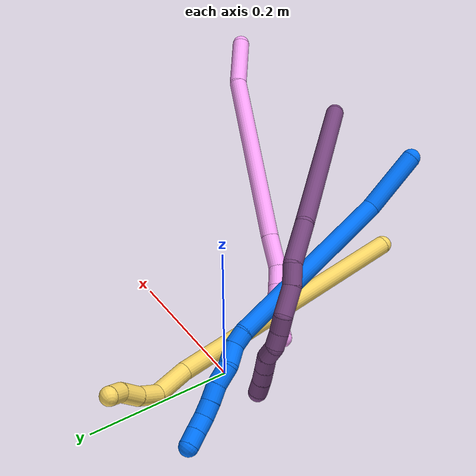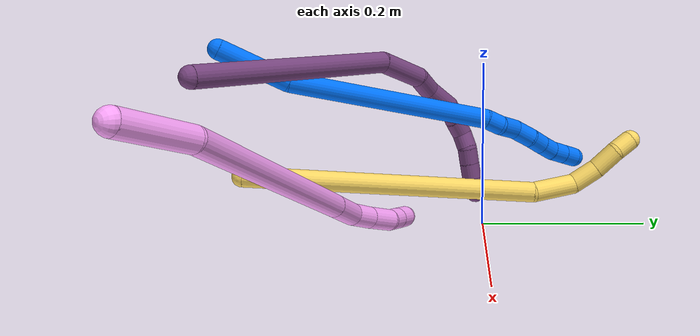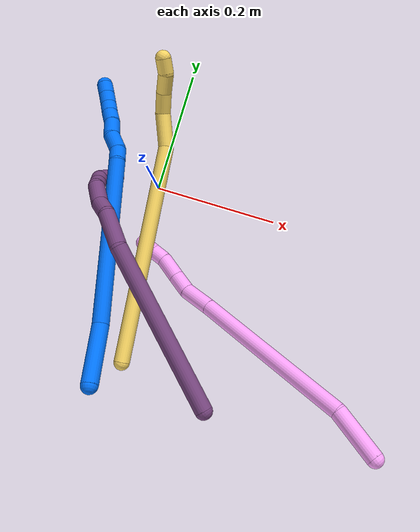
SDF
<sdf version="1.7">
 <world name="default">
  <model name="4">
   <static>0</static>
   <link name="4">
    <collision name="collision-cylinder-e_1_1_4">
     <pose>-0.008515 -0.000313 -0.037858 3.13333 -0.221224 -3.06723</pose>
     <geometry><cylinder><radius>0.0125</radius><length>0.07761</length></cylinder></geometry>
     <surface>
      <friction><ode><mu>1.16</mu><mu2>1.16</mu2><slip1>0</slip1><slip2>0</slip2></ode></friction>
      <contact><ode><kp>1e+06</kp><kd>1</kd><max_vel>0</max_vel><min_depth>0.001</min_depth></ode></contact>
     </surface>
    </collision>
    <visual name="visual-cylinder-e_1_1_4">
     <pose>-0.008515 -0.000313 -0.037858 3.13333 -0.221224 -3.06723</pose>
     <geometry><cylinder><radius>0.0125</radius><length>0.07761</length></cylinder></geometry>
     <material><ambient>1 0.65098 0.996078 1</ambient></material>
    </visual>
    <collision name="collision-cylinder-e_2_4_5">
     <pose>-0.063872 0.026676 -0.193125 -2.91312 -0.370645 2.04318</pose>
     <geometry><cylinder><radius>0.0125</radius><length>0.258647</length></cylinder></geometry>
     <surface>
      <friction><ode><mu>1.16</mu><mu2>1.16</mu2><slip1>0</slip1><slip2>0</slip2></ode></friction>
      <contact><ode><kp>1e+06</kp><kd>1</kd><max_vel>0</max_vel><min_depth>0.001</min_depth></ode></contact>
     </surface>
    </collision>
    <visual name="visual-cylinder-e_2_4_5">
     <pose>-0.063872 0.026676 -0.193125 -2.91312 -0.370645 2.04318</pose>
     <geometry><cylinder><radius>0.0125</radius><length>0.258647</length></cylinder></geometry>
     <material><ambient>1 0.65098 0.996078 1</ambient></material>
    </visual>
    <collision name="collision-cylinder-e_3_5_6">
     <pose>-0.119539 0.060053 -0.332651 -2.87351 -0.367246 1.8855</pose>
     <geometry><cylinder><radius>0.0125</radius><length>0.04915</length></cylinder></geometry>
     <surface>
      <friction><ode><mu>1.16</mu><mu2>1.16</mu2><slip1>0</slip1><slip2>0</slip2></ode></friction>
      <contact><ode><kp>1e+06</kp><kd>1</kd><max_vel>0</max_vel><min_depth>0.001</min_depth></ode></contact>
     </surface>
    </collision>
    <visual name="visual-cylinder-e_3_5_6">
     <pose>-0.119539 0.060053 -0.332651 -2.87351 -0.367246 1.8855</pose>
     <geometry><cylinder><radius>0.0125</radius><length>0.04915</length></cylinder></geometry>
     <material><ambient>1 0.65098 0.996078 1</ambient></material>
    </visual>
    <collision name="collision-cylinder-e_4_6_7">
     <pose>-0.132047 0.066111 -0.369662 3.14041 -0.24251 -3.13187</pose>
     <geometry><cylinder><radius>0.0125</radius><length>0.030685</length></cylinder></geometry>
     <surface>
      <friction><ode><mu>1.16</mu><mu2>1.16</mu2><slip1>0</slip1><slip2>0</slip2></ode></friction>
      <contact><ode><kp>1e+06</kp><kd>1</kd><max_vel>0</max_vel><min_depth>0.001</min_depth></ode></contact>
     </surface>
    </collision>
    <visual name="visual-cylinder-e_4_6_7">
     <pose>-0.132047 0.066111 -0.369662 3.14041 -0.24251 -3.13187</pose>
     <geometry><cylinder><radius>0.0125</radius><length>0.030685</length></cylinder></geometry>
     <material><ambient>1 0.65098 0.996078 1</ambient></material>
    </visual>
    <collision name="collision-cylinder-e_5_7_8">
     <pose>-0.139533 0.065777 -0.403173 3.1246 -0.201405 -2.9738</pose>
     <geometry><cylinder><radius>0.0125</radius><length>0.038009</length></cylinder></geometry>
     <surface>
      <friction><ode><mu>1.16</mu><mu2>1.16</mu2><slip1>0</slip1><slip2>0</slip2></ode></friction>
      <contact><ode><kp>1e+06</kp><kd>1</kd><max_vel>0</max_vel><min_depth>0.001</min_depth></ode></contact>
     </surface>
    </collision>
    <visual name="visual-cylinder-e_5_7_8">
     <pose>-0.139533 0.065777 -0.403173 3.1246 -0.201405 -2.9738</pose>
     <geometry><cylinder><radius>0.0125</radius><length>0.038009</length></cylinder></geometry>
     <material><ambient>1 0.65098 0.996078 1</ambient></material>
    </visual>
    <collision name="collision-cylinder-e_6_8_9">
     <pose>-0.144297 0.068259 -0.432605 -2.88842 -0.085871 0.651134</pose>
     <geometry><cylinder><radius>0.0125</radius><length>0.022424</length></cylinder></geometry>
     <surface>
      <friction><ode><mu>1.16</mu><mu2>1.16</mu2><slip1>0</slip1><slip2>0</slip2></ode></friction>
      <contact><ode><kp>1e+06</kp><kd>1</kd><max_vel>0</max_vel><min_depth>0.001</min_depth></ode></contact>
     </surface>
    </collision>
    <visual name="visual-cylinder-e_6_8_9">
     <pose>-0.144297 0.068259 -0.432605 -2.88842 -0.085871 0.651134</pose>
     <geometry><cylinder><radius>0.0125</radius><length>0.022424</length></cylinder></geometry>
     <material><ambient>1 0.65098 0.996078 1</ambient></material>
    </visual>
    <collision name="collision-cylinder-e_7_9_2">
     <pose>-0.146214 0.073887 -0.454771 -2.89724 -0.081526 0.641391</pose>
     <geometry><cylinder><radius>0.0125</radius><length>0.023475</length></cylinder></geometry>
     <surface>
      <friction><ode><mu>1.16</mu><mu2>1.16</mu2><slip1>0</slip1><slip2>0</slip2></ode></friction>
      <contact><ode><kp>1e+06</kp><kd>1</kd><max_vel>0</max_vel><min_depth>0.001</min_depth></ode></contact>
     </surface>
    </collision>
    <visual name="visual-cylinder-e_7_9_2">
     <pose>-0.146214 0.073887 -0.454771 -2.89724 -0.081526 0.641391</pose>
     <geometry><cylinder><radius>0.0125</radius><length>0.023475</length></cylinder></geometry>
     <material><ambient>1 0.65098 0.996078 1</ambient></material>
    </visual>
    <collision name="collision-sphere-2">
     <pose>-0.14717 0.076717 -0.466122 0 -0 0</pose>
     <geometry><sphere><radius>0.0125</radius></sphere></geometry>
     <surface>
      <friction><ode><mu>1.16</mu><mu2>1.16</mu2><slip1>0</slip1><slip2>0</slip2></ode></friction>
      <contact><ode><kp>1e+06</kp><kd>1</kd><max_vel>0</max_vel><min_depth>0.001</min_depth></ode></contact>
     </surface>
    </collision>
    <visual name="visual-sphere-2">
     <pose>-0.14717 0.076717 -0.466122 0 -0 0</pose>
     <geometry><sphere><radius>0.0125</radius></sphere></geometry>
     <material><ambient>1 0.65098 0.996078 1</ambient></material>
    </visual>
    <collision name="collision-sphere-9">
     <pose>-0.145258 0.071057 -0.44342 0 -0 0</pose>
     <geometry><sphere><radius>0.0125</radius></sphere></geometry>
     <surface>
      <friction><ode><mu>1.16</mu><mu2>1.16</mu2><slip1>0</slip1><slip2>0</slip2></ode></friction>
      <contact><ode><kp>1e+06</kp><kd>1</kd><max_vel>0</max_vel><min_depth>0.001</min_depth></ode></contact>
     </surface>
    </collision>
    <visual name="visual-sphere-9">
     <pose>-0.145258 0.071057 -0.44342 0 -0 0</pose>
     <geometry><sphere><radius>0.0125</radius></sphere></geometry>
     <material><ambient>1 0.65098 0.996078 1</ambient></material>
    </visual>
    <collision name="collision-sphere-4">
     <pose>-0.017029 -0.000626 -0.075716 0 -0 0</pose>
     <geometry><sphere><radius>0.0125</radius></sphere></geometry>
     <surface>
      <friction><ode><mu>1.16</mu><mu2>1.16</mu2><slip1>0</slip1><slip2>0</slip2></ode></friction>
      <contact><ode><kp>1e+06</kp><kd>1</kd><max_vel>0</max_vel><min_depth>0.001</min_depth></ode></contact>
     </surface>
    </collision>
    <visual name="visual-sphere-4">
     <pose>-0.017029 -0.000626 -0.075716 0 -0 0</pose>
     <geometry><sphere><radius>0.0125</radius></sphere></geometry>
     <material><ambient>1 0.65098 0.996078 1</ambient></material>
    </visual>
    <collision name="collision-sphere-1">
     <geometry><sphere><radius>0.0125</radius></sphere></geometry>
     <surface>
      <friction><ode><mu>1.16</mu><mu2>1.16</mu2><slip1>0</slip1><slip2>0</slip2></ode></friction>
      <contact><ode><kp>1e+06</kp><kd>1</kd><max_vel>0</max_vel><min_depth>0.001</min_depth></ode></contact>
     </surface>
    </collision>
    <visual name="visual-sphere-1">
     <geometry><sphere><radius>0.0125</radius></sphere></geometry>
     <material><ambient>1 0.65098 0.996078 1</ambient></material>
    </visual>
    <collision name="collision-sphere-8">
     <pose>-0.143335 0.065461 -0.421791 0 -0 0</pose>
     <geometry><sphere><radius>0.0125</radius></sphere></geometry>
     <surface>
      <friction><ode><mu>1.16</mu><mu2>1.16</mu2><slip1>0</slip1><slip2>0</slip2></ode></friction>
      <contact><ode><kp>1e+06</kp><kd>1</kd><max_vel>0</max_vel><min_depth>0.001</min_depth></ode></contact>
     </surface>
    </collision>
    <visual name="visual-sphere-8">
     <pose>-0.143335 0.065461 -0.421791 0 -0 0</pose>
     <geometry><sphere><radius>0.0125</radius></sphere></geometry>
     <material><ambient>1 0.65098 0.996078 1</ambient></material>
    </visual>
    <collision name="collision-sphere-5">
     <pose>-0.110715 0.053978 -0.310534 0 -0 0</pose>
     <geometry><sphere><radius>0.0125</radius></sphere></geometry>
     <surface>
      <friction><ode><mu>1.16</mu><mu2>1.16</mu2><slip1>0</slip1><slip2>0</slip2></ode></friction>
      <contact><ode><kp>1e+06</kp><kd>1</kd><max_vel>0</max_vel><min_depth>0.001</min_depth></ode></contact>
     </surface>
    </collision>
    <visual name="visual-sphere-5">
     <pose>-0.110715 0.053978 -0.310534 0 -0 0</pose>
     <geometry><sphere><radius>0.0125</radius></sphere></geometry>
     <material><ambient>1 0.65098 0.996078 1</ambient></material>
    </visual>
    <collision name="collision-sphere-6">
     <pose>-0.128363 0.066129 -0.354768 0 -0 0</pose>
     <geometry><sphere><radius>0.0125</radius></sphere></geometry>
     <surface>
      <friction><ode><mu>1.16</mu><mu2>1.16</mu2><slip1>0</slip1><slip2>0</slip2></ode></friction>
      <contact><ode><kp>1e+06</kp><kd>1</kd><max_vel>0</max_vel><min_depth>0.001</min_depth></ode></contact>
     </surface>
    </collision>
    <visual name="visual-sphere-6">
     <pose>-0.128363 0.066129 -0.354768 0 -0 0</pose>
     <geometry><sphere><radius>0.0125</radius></sphere></geometry>
     <material><ambient>1 0.65098 0.996078 1</ambient></material>
    </visual>
    <collision name="collision-sphere-7">
     <pose>-0.135731 0.066094 -0.384555 0 -0 0</pose>
     <geometry><sphere><radius>0.0125</radius></sphere></geometry>
     <surface>
      <friction><ode><mu>1.16</mu><mu2>1.16</mu2><slip1>0</slip1><slip2>0</slip2></ode></friction>
      <contact><ode><kp>1e+06</kp><kd>1</kd><max_vel>0</max_vel><min_depth>0.001</min_depth></ode></contact>
     </surface>
    </collision>
    <visual name="visual-sphere-7">
     <pose>-0.135731 0.066094 -0.384555 0 -0 0</pose>
     <geometry><sphere><radius>0.0125</radius></sphere></geometry>
     <material><ambient>1 0.65098 0.996078 1</ambient></material>
    </visual>
    <inertial>
     <pose>-0.07816 0.035242 -0.232566 0 -0 0</pose>
     <mass>0.5</mass>
     <inertia>
      <ixx>0.000536</ixx>
      <ixy>0</ixy>
      <ixz>0</ixz>
      <iyy>0.002023</iyy>
      <iyz>0</iyz>
      <izz>0.000195</izz>
     </inertia>
    </inertial>
   </link>
   <pose>0.409086 -0.291246 0.217897 0.312833 -1.42549 2.18963</pose>
  </model>
  <model name="5">
   <static>0</static>
   <link name="5">
    <collision name="collision-cylinder-e_1_1_4">
     <pose>-0.034045 0.161458 -0.060806 -1.93098 -0.194825 0.280594</pose>
     <geometry><cylinder><radius>0.0125</radius><length>0.351712</length></cylinder></geometry>
     <surface>
      <friction><ode><mu>1.16</mu><mu2>1.16</mu2><slip1>0</slip1><slip2>0</slip2></ode></friction>
      <contact><ode><kp>1e+06</kp><kd>1</kd><max_vel>0</max_vel><min_depth>0.001</min_depth></ode></contact>
     </surface>
    </collision>
    <visual name="visual-cylinder-e_1_1_4">
     <pose>-0.034045 0.161458 -0.060806 -1.93098 -0.194825 0.280594</pose>
     <geometry><cylinder><radius>0.0125</radius><length>0.351712</length></cylinder></geometry>
     <material><ambient>1 0.858824 0.4 1</ambient></material>
    </visual>
    <collision name="collision-cylinder-e_2_4_5">
     <pose>-0.076827 0.343616 -0.138139 -2.24454 -0.318651 0.64453</pose>
     <geometry><cylinder><radius>0.0125</radius><length>0.055782</length></cylinder></geometry>
     <surface>
      <friction><ode><mu>1.16</mu><mu2>1.16</mu2><slip1>0</slip1><slip2>0</slip2></ode></friction>
      <contact><ode><kp>1e+06</kp><kd>1</kd><max_vel>0</max_vel><min_depth>0.001</min_depth></ode></contact>
     </surface>
    </collision>
    <visual name="visual-cylinder-e_2_4_5">
     <pose>-0.076827 0.343616 -0.138139 -2.24454 -0.318651 0.64453</pose>
     <geometry><cylinder><radius>0.0125</radius><length>0.055782</length></cylinder></geometry>
     <material><ambient>1 0.858824 0.4 1</ambient></material>
    </visual>
    <collision name="collision-cylinder-e_3_5_6">
     <pose>-0.098019 0.37456 -0.161293 -2.14509 -0.795588 1.31533</pose>
     <geometry><cylinder><radius>0.0125</radius><length>0.034871</length></cylinder></geometry>
     <surface>
      <friction><ode><mu>1.16</mu><mu2>1.16</mu2><slip1>0</slip1><slip2>0</slip2></ode></friction>
      <contact><ode><kp>1e+06</kp><kd>1</kd><max_vel>0</max_vel><min_depth>0.001</min_depth></ode></contact>
     </surface>
    </collision>
    <visual name="visual-cylinder-e_3_5_6">
     <pose>-0.098019 0.37456 -0.161293 -2.14509 -0.795588 1.31533</pose>
     <geometry><cylinder><radius>0.0125</radius><length>0.034871</length></cylinder></geometry>
     <material><ambient>1 0.858824 0.4 1</ambient></material>
    </visual>
    <collision name="collision-cylinder-e_4_6_7">
     <pose>-0.12463 0.392476 -0.172244 -2.08389 -1.01441 1.52049</pose>
     <geometry><cylinder><radius>0.0125</radius><length>0.033343</length></cylinder></geometry>
     <surface>
      <friction><ode><mu>1.16</mu><mu2>1.16</mu2><slip1>0</slip1><slip2>0</slip2></ode></friction>
      <contact><ode><kp>1e+06</kp><kd>1</kd><max_vel>0</max_vel><min_depth>0.001</min_depth></ode></contact>
     </surface>
    </collision>
    <visual name="visual-cylinder-e_4_6_7">
     <pose>-0.12463 0.392476 -0.172244 -2.08389 -1.01441 1.52049</pose>
     <geometry><cylinder><radius>0.0125</radius><length>0.033343</length></cylinder></geometry>
     <material><ambient>1 0.858824 0.4 1</ambient></material>
    </visual>
    <collision name="collision-cylinder-e_5_7_2">
     <pose>-0.146787 0.406044 -0.183548 -2.4402 -0.719063 1.59789</pose>
     <geometry><cylinder><radius>0.0125</radius><length>0.024292</length></cylinder></geometry>
     <surface>
      <friction><ode><mu>1.16</mu><mu2>1.16</mu2><slip1>0</slip1><slip2>0</slip2></ode></friction>
      <contact><ode><kp>1e+06</kp><kd>1</kd><max_vel>0</max_vel><min_depth>0.001</min_depth></ode></contact>
     </surface>
    </collision>
    <visual name="visual-cylinder-e_5_7_2">
     <pose>-0.146787 0.406044 -0.183548 -2.4402 -0.719063 1.59789</pose>
     <geometry><cylinder><radius>0.0125</radius><length>0.024292</length></cylinder></geometry>
     <material><ambient>1 0.858824 0.4 1</ambient></material>
    </visual>
    <collision name="collision-sphere-2">
     <pose>-0.154787 0.411941 -0.190529 0 -0 0</pose>
     <geometry><sphere><radius>0.0125</radius></sphere></geometry>
     <surface>
      <friction><ode><mu>1.16</mu><mu2>1.16</mu2><slip1>0</slip1><slip2>0</slip2></ode></friction>
      <contact><ode><kp>1e+06</kp><kd>1</kd><max_vel>0</max_vel><min_depth>0.001</min_depth></ode></contact>
     </surface>
    </collision>
    <visual name="visual-sphere-2">
     <pose>-0.154787 0.411941 -0.190529 0 -0 0</pose>
     <geometry><sphere><radius>0.0125</radius></sphere></geometry>
     <material><ambient>1 0.858824 0.4 1</ambient></material>
    </visual>
    <collision name="collision-sphere-7">
     <pose>-0.138787 0.400147 -0.176566 0 -0 0</pose>
     <geometry><sphere><radius>0.0125</radius></sphere></geometry>
     <surface>
      <friction><ode><mu>1.16</mu><mu2>1.16</mu2><slip1>0</slip1><slip2>0</slip2></ode></friction>
      <contact><ode><kp>1e+06</kp><kd>1</kd><max_vel>0</max_vel><min_depth>0.001</min_depth></ode></contact>
     </surface>
    </collision>
    <visual name="visual-sphere-7">
     <pose>-0.138787 0.400147 -0.176566 0 -0 0</pose>
     <geometry><sphere><radius>0.0125</radius></sphere></geometry>
     <material><ambient>1 0.858824 0.4 1</ambient></material>
    </visual>
    <collision name="collision-sphere-6">
     <pose>-0.110473 0.384805 -0.167922 0 -0 0</pose>
     <geometry><sphere><radius>0.0125</radius></sphere></geometry>
     <surface>
      <friction><ode><mu>1.16</mu><mu2>1.16</mu2><slip1>0</slip1><slip2>0</slip2></ode></friction>
      <contact><ode><kp>1e+06</kp><kd>1</kd><max_vel>0</max_vel><min_depth>0.001</min_depth></ode></contact>
     </surface>
    </collision>
    <visual name="visual-sphere-6">
     <pose>-0.110473 0.384805 -0.167922 0 -0 0</pose>
     <geometry><sphere><radius>0.0125</radius></sphere></geometry>
     <material><ambient>1 0.858824 0.4 1</ambient></material>
    </visual>
    <collision name="collision-sphere-5">
     <pose>-0.085565 0.364315 -0.154665 0 -0 0</pose>
     <geometry><sphere><radius>0.0125</radius></sphere></geometry>
     <surface>
      <friction><ode><mu>1.16</mu><mu2>1.16</mu2><slip1>0</slip1><slip2>0</slip2></ode></friction>
      <contact><ode><kp>1e+06</kp><kd>1</kd><max_vel>0</max_vel><min_depth>0.001</min_depth></ode></contact>
     </surface>
    </collision>
    <visual name="visual-sphere-5">
     <pose>-0.085565 0.364315 -0.154665 0 -0 0</pose>
     <geometry><sphere><radius>0.0125</radius></sphere></geometry>
     <material><ambient>1 0.858824 0.4 1</ambient></material>
    </visual>
    <collision name="collision-sphere-1">
     <geometry><sphere><radius>0.0125</radius></sphere></geometry>
     <surface>
      <friction><ode><mu>1.16</mu><mu2>1.16</mu2><slip1>0</slip1><slip2>0</slip2></ode></friction>
      <contact><ode><kp>1e+06</kp><kd>1</kd><max_vel>0</max_vel><min_depth>0.001</min_depth></ode></contact>
     </surface>
    </collision>
    <visual name="visual-sphere-1">
     <geometry><sphere><radius>0.0125</radius></sphere></geometry>
     <material><ambient>1 0.858824 0.4 1</ambient></material>
    </visual>
    <collision name="collision-sphere-4">
     <pose>-0.068089 0.322917 -0.121613 0 -0 0</pose>
     <geometry><sphere><radius>0.0125</radius></sphere></geometry>
     <surface>
      <friction><ode><mu>1.16</mu><mu2>1.16</mu2><slip1>0</slip1><slip2>0</slip2></ode></friction>
      <contact><ode><kp>1e+06</kp><kd>1</kd><max_vel>0</max_vel><min_depth>0.001</min_depth></ode></contact>
     </surface>
    </collision>
    <visual name="visual-sphere-4">
     <pose>-0.068089 0.322917 -0.121613 0 -0 0</pose>
     <geometry><sphere><radius>0.0125</radius></sphere></geometry>
     <material><ambient>1 0.858824 0.4 1</ambient></material>
    </visual>
    <inertial>
     <pose>-0.054798 0.223931 -0.089837 0 -0 0</pose>
     <mass>0.5</mass>
     <inertia>
      <ixx>0.004438</ixx>
      <ixy>0</ixy>
      <ixz>0</ixz>
      <iyy>-1.2e-05</iyy>
      <iyz>0</iyz>
      <izz>-0.002656</izz>
     </inertia>
    </inertial>
   </link>
   <pose>0.034252 -0.285366 0.071116 -1.60764 1.26359 -1.85376</pose>
  </model>
  <model name="14">
   <static>0</static>
   <link name="14">
    <collision name="collision-cylinder-e_1_1_4">
     <pose>0.002171 0.00106 -0.044407 -3.11772 0.048831 -2.23221</pose>
     <geometry><cylinder><radius>0.0125</radius><length>0.088945</length></cylinder></geometry>
     <surface>
      <friction><ode><mu>1.16</mu><mu2>1.16</mu2><slip1>0</slip1><slip2>0</slip2></ode></friction>
      <contact><ode><kp>1e+06</kp><kd>1</kd><max_vel>0</max_vel><min_depth>0.001</min_depth></ode></contact>
     </surface>
    </collision>
    <visual name="visual-cylinder-e_1_1_4">
     <pose>0.002171 0.00106 -0.044407 -3.11772 0.048831 -2.23221</pose>
     <geometry><cylinder><radius>0.0125</radius><length>0.088945</length></cylinder></geometry>
     <material><ambient>0 0.462745 1 1</ambient></material>
    </visual>
    <collision name="collision-cylinder-e_2_4_5">
     <pose>0.02455 0.033191 -0.20921 -2.88903 0.161117 -1.13283</pose>
     <geometry><cylinder><radius>0.0125</radius><length>0.251943</length></cylinder></geometry>
     <surface>
      <friction><ode><mu>1.16</mu><mu2>1.16</mu2><slip1>0</slip1><slip2>0</slip2></ode></friction>
      <contact><ode><kp>1e+06</kp><kd>1</kd><max_vel>0</max_vel><min_depth>0.001</min_depth></ode></contact>
     </surface>
    </collision>
    <visual name="visual-cylinder-e_2_4_5">
     <pose>0.02455 0.033191 -0.20921 -2.88903 0.161117 -1.13283</pose>
     <geometry><cylinder><radius>0.0125</radius><length>0.251943</length></cylinder></geometry>
     <material><ambient>0 0.462745 1 1</ambient></material>
    </visual>
    <collision name="collision-cylinder-e_3_5_6">
     <pose>0.044509 0.065231 -0.34024 -3.05069 -0.02335 0.502533</pose>
     <geometry><cylinder><radius>0.0125</radius><length>0.021363</length></cylinder></geometry>
     <surface>
      <friction><ode><mu>1.16</mu><mu2>1.16</mu2><slip1>0</slip1><slip2>0</slip2></ode></friction>
      <contact><ode><kp>1e+06</kp><kd>1</kd><max_vel>0</max_vel><min_depth>0.001</min_depth></ode></contact>
     </surface>
    </collision>
    <visual name="visual-cylinder-e_3_5_6">
     <pose>0.044509 0.065231 -0.34024 -3.05069 -0.02335 0.502533</pose>
     <geometry><cylinder><radius>0.0125</radius><length>0.021363</length></cylinder></geometry>
     <material><ambient>0 0.462745 1 1</ambient></material>
    </visual>
    <collision name="collision-cylinder-e_4_6_7">
     <pose>0.040224 0.071432 -0.36331 -2.74338 -0.290636 1.255</pose>
     <geometry><cylinder><radius>0.0125</radius><length>0.028165</length></cylinder></geometry>
     <surface>
      <friction><ode><mu>1.16</mu><mu2>1.16</mu2><slip1>0</slip1><slip2>0</slip2></ode></friction>
      <contact><ode><kp>1e+06</kp><kd>1</kd><max_vel>0</max_vel><min_depth>0.001</min_depth></ode></contact>
     </surface>
    </collision>
    <visual name="visual-cylinder-e_4_6_7">
     <pose>0.040224 0.071432 -0.36331 -2.74338 -0.290636 1.255</pose>
     <geometry><cylinder><radius>0.0125</radius><length>0.028165</length></cylinder></geometry>
     <material><ambient>0 0.462745 1 1</ambient></material>
    </visual>
    <collision name="collision-cylinder-e_5_7_8">
     <pose>0.035025 0.077558 -0.38935 -3.076 -0.085169 1.82926</pose>
     <geometry><cylinder><radius>0.0125</radius><length>0.027364</length></cylinder></geometry>
     <surface>
      <friction><ode><mu>1.16</mu><mu2>1.16</mu2><slip1>0</slip1><slip2>0</slip2></ode></friction>
      <contact><ode><kp>1e+06</kp><kd>1</kd><max_vel>0</max_vel><min_depth>0.001</min_depth></ode></contact>
     </surface>
    </collision>
    <visual name="visual-cylinder-e_5_7_8">
     <pose>0.035025 0.077558 -0.38935 -3.076 -0.085169 1.82926</pose>
     <geometry><cylinder><radius>0.0125</radius><length>0.027364</length></cylinder></geometry>
     <material><ambient>0 0.462745 1 1</ambient></material>
    </visual>
    <collision name="collision-cylinder-e_6_8_9">
     <pose>0.03082 0.079911 -0.413418 -3.003 -0.280227 2.22693</pose>
     <geometry><cylinder><radius>0.0125</radius><length>0.021991</length></cylinder></geometry>
     <surface>
      <friction><ode><mu>1.16</mu><mu2>1.16</mu2><slip1>0</slip1><slip2>0</slip2></ode></friction>
      <contact><ode><kp>1e+06</kp><kd>1</kd><max_vel>0</max_vel><min_depth>0.001</min_depth></ode></contact>
     </surface>
    </collision>
    <visual name="visual-cylinder-e_6_8_9">
     <pose>0.03082 0.079911 -0.413418 -3.003 -0.280227 2.22693</pose>
     <geometry><cylinder><radius>0.0125</radius><length>0.021991</length></cylinder></geometry>
     <material><ambient>0 0.462745 1 1</ambient></material>
    </visual>
    <collision name="collision-cylinder-e_7_9_10">
     <pose>0.025644 0.082544 -0.433593 -3.02134 -0.214939 2.12366</pose>
     <geometry><cylinder><radius>0.0125</radius><length>0.020021</length></cylinder></geometry>
     <surface>
      <friction><ode><mu>1.16</mu><mu2>1.16</mu2><slip1>0</slip1><slip2>0</slip2></ode></friction>
      <contact><ode><kp>1e+06</kp><kd>1</kd><max_vel>0</max_vel><min_depth>0.001</min_depth></ode></contact>
     </surface>
    </collision>
    <visual name="visual-cylinder-e_7_9_10">
     <pose>0.025644 0.082544 -0.433593 -3.02134 -0.214939 2.12366</pose>
     <geometry><cylinder><radius>0.0125</radius><length>0.020021</length></cylinder></geometry>
     <material><ambient>0 0.462745 1 1</ambient></material>
    </visual>
    <collision name="collision-cylinder-e_8_10_11">
     <pose>0.022249 0.08651 -0.452874 -2.85774 -0.125703 0.829777</pose>
     <geometry><cylinder><radius>0.0125</radius><length>0.020101</length></cylinder></geometry>
     <surface>
      <friction><ode><mu>1.16</mu><mu2>1.16</mu2><slip1>0</slip1><slip2>0</slip2></ode></friction>
      <contact><ode><kp>1e+06</kp><kd>1</kd><max_vel>0</max_vel><min_depth>0.001</min_depth></ode></contact>
     </surface>
    </collision>
    <visual name="visual-cylinder-e_8_10_11">
     <pose>0.022249 0.08651 -0.452874 -2.85774 -0.125703 0.829777</pose>
     <geometry><cylinder><radius>0.0125</radius><length>0.020101</length></cylinder></geometry>
     <material><ambient>0 0.462745 1 1</ambient></material>
    </visual>
    <collision name="collision-cylinder-e_9_11_2">
     <pose>0.019625 0.092169 -0.471985 -2.8496 -0.136028 0.867645</pose>
     <geometry><cylinder><radius>0.0125</radius><length>0.020107</length></cylinder></geometry>
     <surface>
      <friction><ode><mu>1.16</mu><mu2>1.16</mu2><slip1>0</slip1><slip2>0</slip2></ode></friction>
      <contact><ode><kp>1e+06</kp><kd>1</kd><max_vel>0</max_vel><min_depth>0.001</min_depth></ode></contact>
     </surface>
    </collision>
    <visual name="visual-cylinder-e_9_11_2">
     <pose>0.019625 0.092169 -0.471985 -2.8496 -0.136028 0.867645</pose>
     <geometry><cylinder><radius>0.0125</radius><length>0.020107</length></cylinder></geometry>
     <material><ambient>0 0.462745 1 1</ambient></material>
    </visual>
    <collision name="collision-sphere-2">
     <pose>0.018262 0.095037 -0.481524 0 -0 0</pose>
     <geometry><sphere><radius>0.0125</radius></sphere></geometry>
     <surface>
      <friction><ode><mu>1.16</mu><mu2>1.16</mu2><slip1>0</slip1><slip2>0</slip2></ode></friction>
      <contact><ode><kp>1e+06</kp><kd>1</kd><max_vel>0</max_vel><min_depth>0.001</min_depth></ode></contact>
     </surface>
    </collision>
    <visual name="visual-sphere-2">
     <pose>0.018262 0.095037 -0.481524 0 -0 0</pose>
     <geometry><sphere><radius>0.0125</radius></sphere></geometry>
     <material><ambient>0 0.462745 1 1</ambient></material>
    </visual>
    <collision name="collision-sphere-11">
     <pose>0.020989 0.089302 -0.462446 0 -0 0</pose>
     <geometry><sphere><radius>0.0125</radius></sphere></geometry>
     <surface>
      <friction><ode><mu>1.16</mu><mu2>1.16</mu2><slip1>0</slip1><slip2>0</slip2></ode></friction>
      <contact><ode><kp>1e+06</kp><kd>1</kd><max_vel>0</max_vel><min_depth>0.001</min_depth></ode></contact>
     </surface>
    </collision>
    <visual name="visual-sphere-11">
     <pose>0.020989 0.089302 -0.462446 0 -0 0</pose>
     <geometry><sphere><radius>0.0125</radius></sphere></geometry>
     <material><ambient>0 0.462745 1 1</ambient></material>
    </visual>
    <collision name="collision-sphere-10">
     <pose>0.023509 0.083717 -0.443302 0 -0 0</pose>
     <geometry><sphere><radius>0.0125</radius></sphere></geometry>
     <surface>
      <friction><ode><mu>1.16</mu><mu2>1.16</mu2><slip1>0</slip1><slip2>0</slip2></ode></friction>
      <contact><ode><kp>1e+06</kp><kd>1</kd><max_vel>0</max_vel><min_depth>0.001</min_depth></ode></contact>
     </surface>
    </collision>
    <visual name="visual-sphere-10">
     <pose>0.023509 0.083717 -0.443302 0 -0 0</pose>
     <geometry><sphere><radius>0.0125</radius></sphere></geometry>
     <material><ambient>0 0.462745 1 1</ambient></material>
    </visual>
    <collision name="collision-sphere-9">
     <pose>0.027779 0.081371 -0.423883 0 -0 0</pose>
     <geometry><sphere><radius>0.0125</radius></sphere></geometry>
     <surface>
      <friction><ode><mu>1.16</mu><mu2>1.16</mu2><slip1>0</slip1><slip2>0</slip2></ode></friction>
      <contact><ode><kp>1e+06</kp><kd>1</kd><max_vel>0</max_vel><min_depth>0.001</min_depth></ode></contact>
     </surface>
    </collision>
    <visual name="visual-sphere-9">
     <pose>0.027779 0.081371 -0.423883 0 -0 0</pose>
     <geometry><sphere><radius>0.0125</radius></sphere></geometry>
     <material><ambient>0 0.462745 1 1</ambient></material>
    </visual>
    <collision name="collision-sphere-4">
     <pose>0.004342 0.002121 -0.088814 0 -0 0</pose>
     <geometry><sphere><radius>0.0125</radius></sphere></geometry>
     <surface>
      <friction><ode><mu>1.16</mu><mu2>1.16</mu2><slip1>0</slip1><slip2>0</slip2></ode></friction>
      <contact><ode><kp>1e+06</kp><kd>1</kd><max_vel>0</max_vel><min_depth>0.001</min_depth></ode></contact>
     </surface>
    </collision>
    <visual name="visual-sphere-4">
     <pose>0.004342 0.002121 -0.088814 0 -0 0</pose>
     <geometry><sphere><radius>0.0125</radius></sphere></geometry>
     <material><ambient>0 0.462745 1 1</ambient></material>
    </visual>
    <collision name="collision-sphere-1">
     <geometry><sphere><radius>0.0125</radius></sphere></geometry>
     <surface>
      <friction><ode><mu>1.16</mu><mu2>1.16</mu2><slip1>0</slip1><slip2>0</slip2></ode></friction>
      <contact><ode><kp>1e+06</kp><kd>1</kd><max_vel>0</max_vel><min_depth>0.001</min_depth></ode></contact>
     </surface>
    </collision>
    <visual name="visual-sphere-1">
     <geometry><sphere><radius>0.0125</radius></sphere></geometry>
     <material><ambient>0 0.462745 1 1</ambient></material>
    </visual>
    <collision name="collision-sphere-8">
     <pose>0.033861 0.078451 -0.402953 0 -0 0</pose>
     <geometry><sphere><radius>0.0125</radius></sphere></geometry>
     <surface>
      <friction><ode><mu>1.16</mu><mu2>1.16</mu2><slip1>0</slip1><slip2>0</slip2></ode></friction>
      <contact><ode><kp>1e+06</kp><kd>1</kd><max_vel>0</max_vel><min_depth>0.001</min_depth></ode></contact>
     </surface>
    </collision>
    <visual name="visual-sphere-8">
     <pose>0.033861 0.078451 -0.402953 0 -0 0</pose>
     <geometry><sphere><radius>0.0125</radius></sphere></geometry>
     <material><ambient>0 0.462745 1 1</ambient></material>
    </visual>
    <collision name="collision-sphere-5">
     <pose>0.044759 0.064262 -0.329605 0 -0 0</pose>
     <geometry><sphere><radius>0.0125</radius></sphere></geometry>
     <surface>
      <friction><ode><mu>1.16</mu><mu2>1.16</mu2><slip1>0</slip1><slip2>0</slip2></ode></friction>
      <contact><ode><kp>1e+06</kp><kd>1</kd><max_vel>0</max_vel><min_depth>0.001</min_depth></ode></contact>
     </surface>
    </collision>
    <visual name="visual-sphere-5">
     <pose>0.044759 0.064262 -0.329605 0 -0 0</pose>
     <geometry><sphere><radius>0.0125</radius></sphere></geometry>
     <material><ambient>0 0.462745 1 1</ambient></material>
    </visual>
    <collision name="collision-sphere-6">
     <pose>0.04426 0.0662 -0.350874 0 -0 0</pose>
     <geometry><sphere><radius>0.0125</radius></sphere></geometry>
     <surface>
      <friction><ode><mu>1.16</mu><mu2>1.16</mu2><slip1>0</slip1><slip2>0</slip2></ode></friction>
      <contact><ode><kp>1e+06</kp><kd>1</kd><max_vel>0</max_vel><min_depth>0.001</min_depth></ode></contact>
     </surface>
    </collision>
    <visual name="visual-sphere-6">
     <pose>0.04426 0.0662 -0.350874 0 -0 0</pose>
     <geometry><sphere><radius>0.0125</radius></sphere></geometry>
     <material><ambient>0 0.462745 1 1</ambient></material>
    </visual>
    <collision name="collision-sphere-7">
     <pose>0.036189 0.076664 -0.375747 0 -0 0</pose>
     <geometry><sphere><radius>0.0125</radius></sphere></geometry>
     <surface>
      <friction><ode><mu>1.16</mu><mu2>1.16</mu2><slip1>0</slip1><slip2>0</slip2></ode></friction>
      <contact><ode><kp>1e+06</kp><kd>1</kd><max_vel>0</max_vel><min_depth>0.001</min_depth></ode></contact>
     </surface>
    </collision>
    <visual name="visual-sphere-7">
     <pose>0.036189 0.076664 -0.375747 0 -0 0</pose>
     <geometry><sphere><radius>0.0125</radius></sphere></geometry>
     <material><ambient>0 0.462745 1 1</ambient></material>
    </visual>
    <inertial>
     <pose>0.022907 0.041973 -0.242359 0 -0 0</pose>
     <mass>0.5</mass>
     <inertia>
      <ixx>-0.000711</ixx>
      <ixy>0</ixy>
      <ixz>0</ixz>
      <iyy>-0.001696</iyy>
      <iyz>0</iyz>
      <izz>-0.000589</izz>
     </inertia>
    </inertial>
   </link>
   <pose>0.01717 -0.308433 0.219446 0.94994 -0.519832 0.573605</pose>
  </model>
  <model name="20">
   <static>0</static>
   <link name="20">
    <collision name="collision-cylinder-e_1_1_4">
     <pose>-0.012603 0.019759 -0.123602 -2.98308 -0.100348 1.1276</pose>
     <geometry><cylinder><radius>0.0125</radius><length>0.251608</length></cylinder></geometry>
     <surface>
      <friction><ode><mu>1.16</mu><mu2>1.16</mu2><slip1>0</slip1><slip2>0</slip2></ode></friction>
      <contact><ode><kp>1e+06</kp><kd>1</kd><max_vel>0</max_vel><min_depth>0.001</min_depth></ode></contact>
     </surface>
    </collision>
    <visual name="visual-cylinder-e_1_1_4">
     <pose>-0.012603 0.019759 -0.123602 -2.98308 -0.100348 1.1276</pose>
     <geometry><cylinder><radius>0.0125</radius><length>0.251608</length></cylinder></geometry>
     <material><ambient>0.478431 0.278431 0.509804 1</ambient></material>
    </visual>
    <collision name="collision-cylinder-e_2_4_5">
     <pose>-0.017448 0.04723 -0.274532 -2.86651 0.266714 -1.53953</pose>
     <geometry><cylinder><radius>0.0125</radius><length>0.058873</length></cylinder></geometry>
     <surface>
      <friction><ode><mu>1.16</mu><mu2>1.16</mu2><slip1>0</slip1><slip2>0</slip2></ode></friction>
      <contact><ode><kp>1e+06</kp><kd>1</kd><max_vel>0</max_vel><min_depth>0.001</min_depth></ode></contact>
     </surface>
    </collision>
    <visual name="visual-cylinder-e_2_4_5">
     <pose>-0.017448 0.04723 -0.274532 -2.86651 0.266714 -1.53953</pose>
     <geometry><cylinder><radius>0.0125</radius><length>0.058873</length></cylinder></geometry>
     <material><ambient>0.478431 0.278431 0.509804 1</ambient></material>
    </visual>
    <collision name="collision-cylinder-e_3_5_6">
     <pose>-0.00178 0.055926 -0.31355 -3.05771 0.593197 -2.86866</pose>
     <geometry><cylinder><radius>0.0125</radius><length>0.028297</length></cylinder></geometry>
     <surface>
      <friction><ode><mu>1.16</mu><mu2>1.16</mu2><slip1>0</slip1><slip2>0</slip2></ode></friction>
      <contact><ode><kp>1e+06</kp><kd>1</kd><max_vel>0</max_vel><min_depth>0.001</min_depth></ode></contact>
     </surface>
    </collision>
    <visual name="visual-cylinder-e_3_5_6">
     <pose>-0.00178 0.055926 -0.31355 -3.05771 0.593197 -2.86866</pose>
     <geometry><cylinder><radius>0.0125</radius><length>0.028297</length></cylinder></geometry>
     <material><ambient>0.478431 0.278431 0.509804 1</ambient></material>
    </visual>
    <collision name="collision-cylinder-e_4_6_7">
     <pose>0.015563 0.062918 -0.340971 -2.77674 0.510642 -1.91109</pose>
     <geometry><cylinder><radius>0.0125</radius><length>0.038604</length></cylinder></geometry>
     <surface>
      <friction><ode><mu>1.16</mu><mu2>1.16</mu2><slip1>0</slip1><slip2>0</slip2></ode></friction>
      <contact><ode><kp>1e+06</kp><kd>1</kd><max_vel>0</max_vel><min_depth>0.001</min_depth></ode></contact>
     </surface>
    </collision>
    <visual name="visual-cylinder-e_4_6_7">
     <pose>0.015563 0.062918 -0.340971 -2.77674 0.510642 -1.91109</pose>
     <geometry><cylinder><radius>0.0125</radius><length>0.038604</length></cylinder></geometry>
     <material><ambient>0.478431 0.278431 0.509804 1</ambient></material>
    </visual>
    <collision name="collision-cylinder-e_5_7_8">
     <pose>0.034205 0.07214 -0.361809 -2.57995 0.990743 -2.16087</pose>
     <geometry><cylinder><radius>0.0125</radius><length>0.022019</length></cylinder></geometry>
     <surface>
      <friction><ode><mu>1.16</mu><mu2>1.16</mu2><slip1>0</slip1><slip2>0</slip2></ode></friction>
      <contact><ode><kp>1e+06</kp><kd>1</kd><max_vel>0</max_vel><min_depth>0.001</min_depth></ode></contact>
     </surface>
    </collision>
    <visual name="visual-cylinder-e_5_7_8">
     <pose>0.034205 0.07214 -0.361809 -2.57995 0.990743 -2.16087</pose>
     <geometry><cylinder><radius>0.0125</radius><length>0.022019</length></cylinder></geometry>
     <material><ambient>0.478431 0.278431 0.509804 1</ambient></material>
    </visual>
    <collision name="collision-cylinder-e_6_8_9">
     <pose>0.051446 0.079022 -0.372193 -2.53406 0.896034 -1.98571</pose>
     <geometry><cylinder><radius>0.0125</radius><length>0.020574</length></cylinder></geometry>
     <surface>
      <friction><ode><mu>1.16</mu><mu2>1.16</mu2><slip1>0</slip1><slip2>0</slip2></ode></friction>
      <contact><ode><kp>1e+06</kp><kd>1</kd><max_vel>0</max_vel><min_depth>0.001</min_depth></ode></contact>
     </surface>
    </collision>
    <visual name="visual-cylinder-e_6_8_9">
     <pose>0.051446 0.079022 -0.372193 -2.53406 0.896034 -1.98571</pose>
     <geometry><cylinder><radius>0.0125</radius><length>0.020574</length></cylinder></geometry>
     <material><ambient>0.478431 0.278431 0.509804 1</ambient></material>
    </visual>
    <collision name="collision-cylinder-e_7_9_10">
     <pose>0.067826 0.088192 -0.377866 -1.64276 0.986856 -1.04812</pose>
     <geometry><cylinder><radius>0.0125</radius><length>0.020011</length></cylinder></geometry>
     <surface>
      <friction><ode><mu>1.16</mu><mu2>1.16</mu2><slip1>0</slip1><slip2>0</slip2></ode></friction>
      <contact><ode><kp>1e+06</kp><kd>1</kd><max_vel>0</max_vel><min_depth>0.001</min_depth></ode></contact>
     </surface>
    </collision>
    <visual name="visual-cylinder-e_7_9_10">
     <pose>0.067826 0.088192 -0.377866 -1.64276 0.986856 -1.04812</pose>
     <geometry><cylinder><radius>0.0125</radius><length>0.020011</length></cylinder></geometry>
     <material><ambient>0.478431 0.278431 0.509804 1</ambient></material>
    </visual>
    <collision name="collision-cylinder-e_8_10_11">
     <pose>0.085702 0.096126 -0.38008 -2.21276 1.26229 -1.93983</pose>
     <geometry><cylinder><radius>0.0125</radius><length>0.020001</length></cylinder></geometry>
     <surface>
      <friction><ode><mu>1.16</mu><mu2>1.16</mu2><slip1>0</slip1><slip2>0</slip2></ode></friction>
      <contact><ode><kp>1e+06</kp><kd>1</kd><max_vel>0</max_vel><min_depth>0.001</min_depth></ode></contact>
     </surface>
    </collision>
    <visual name="visual-cylinder-e_8_10_11">
     <pose>0.085702 0.096126 -0.38008 -2.21276 1.26229 -1.93983</pose>
     <geometry><cylinder><radius>0.0125</radius><length>0.020001</length></cylinder></geometry>
     <material><ambient>0.478431 0.278431 0.509804 1</ambient></material>
    </visual>
    <collision name="collision-cylinder-e_9_11_12">
     <pose>0.104695 0.101254 -0.383687 -2.15659 1.24138 -1.85389</pose>
     <geometry><cylinder><radius>0.0125</radius><length>0.020005</length></cylinder></geometry>
     <surface>
      <friction><ode><mu>1.16</mu><mu2>1.16</mu2><slip1>0</slip1><slip2>0</slip2></ode></friction>
      <contact><ode><kp>1e+06</kp><kd>1</kd><max_vel>0</max_vel><min_depth>0.001</min_depth></ode></contact>
     </surface>
    </collision>
    <visual name="visual-cylinder-e_9_11_12">
     <pose>0.104695 0.101254 -0.383687 -2.15659 1.24138 -1.85389</pose>
     <geometry><cylinder><radius>0.0125</radius><length>0.020005</length></cylinder></geometry>
     <material><ambient>0.478431 0.278431 0.509804 1</ambient></material>
    </visual>
    <collision name="collision-cylinder-e_10_12_2">
     <pose>0.123405 0.107323 -0.387276 -2.06103 1.17873 -1.6792</pose>
     <geometry><cylinder><radius>0.0125</radius><length>0.020009</length></cylinder></geometry>
     <surface>
      <friction><ode><mu>1.16</mu><mu2>1.16</mu2><slip1>0</slip1><slip2>0</slip2></ode></friction>
      <contact><ode><kp>1e+06</kp><kd>1</kd><max_vel>0</max_vel><min_depth>0.001</min_depth></ode></contact>
     </surface>
    </collision>
    <visual name="visual-cylinder-e_10_12_2">
     <pose>0.123405 0.107323 -0.387276 -2.06103 1.17873 -1.6792</pose>
     <geometry><cylinder><radius>0.0125</radius><length>0.020009</length></cylinder></geometry>
     <material><ambient>0.478431 0.278431 0.509804 1</ambient></material>
    </visual>
    <collision name="collision-sphere-2">
     <pose>0.13265 0.110695 -0.389076 0 -0 0</pose>
     <geometry><sphere><radius>0.0125</radius></sphere></geometry>
     <surface>
      <friction><ode><mu>1.16</mu><mu2>1.16</mu2><slip1>0</slip1><slip2>0</slip2></ode></friction>
      <contact><ode><kp>1e+06</kp><kd>1</kd><max_vel>0</max_vel><min_depth>0.001</min_depth></ode></contact>
     </surface>
    </collision>
    <visual name="visual-sphere-2">
     <pose>0.13265 0.110695 -0.389076 0 -0 0</pose>
     <geometry><sphere><radius>0.0125</radius></sphere></geometry>
     <material><ambient>0.478431 0.278431 0.509804 1</ambient></material>
    </visual>
    <collision name="collision-sphere-12">
     <pose>0.11416 0.10395 -0.385476 0 -0 0</pose>
     <geometry><sphere><radius>0.0125</radius></sphere></geometry>
     <surface>
      <friction><ode><mu>1.16</mu><mu2>1.16</mu2><slip1>0</slip1><slip2>0</slip2></ode></friction>
      <contact><ode><kp>1e+06</kp><kd>1</kd><max_vel>0</max_vel><min_depth>0.001</min_depth></ode></contact>
     </surface>
    </collision>
    <visual name="visual-sphere-12">
     <pose>0.11416 0.10395 -0.385476 0 -0 0</pose>
     <geometry><sphere><radius>0.0125</radius></sphere></geometry>
     <material><ambient>0.478431 0.278431 0.509804 1</ambient></material>
    </visual>
    <collision name="collision-sphere-11">
     <pose>0.09523 0.098558 -0.381898 0 -0 0</pose>
     <geometry><sphere><radius>0.0125</radius></sphere></geometry>
     <surface>
      <friction><ode><mu>1.16</mu><mu2>1.16</mu2><slip1>0</slip1><slip2>0</slip2></ode></friction>
      <contact><ode><kp>1e+06</kp><kd>1</kd><max_vel>0</max_vel><min_depth>0.001</min_depth></ode></contact>
     </surface>
    </collision>
    <visual name="visual-sphere-11">
     <pose>0.09523 0.098558 -0.381898 0 -0 0</pose>
     <geometry><sphere><radius>0.0125</radius></sphere></geometry>
     <material><ambient>0.478431 0.278431 0.509804 1</ambient></material>
    </visual>
    <collision name="collision-sphere-10">
     <pose>0.076174 0.093694 -0.378262 0 -0 0</pose>
     <geometry><sphere><radius>0.0125</radius></sphere></geometry>
     <surface>
      <friction><ode><mu>1.16</mu><mu2>1.16</mu2><slip1>0</slip1><slip2>0</slip2></ode></friction>
      <contact><ode><kp>1e+06</kp><kd>1</kd><max_vel>0</max_vel><min_depth>0.001</min_depth></ode></contact>
     </surface>
    </collision>
    <visual name="visual-sphere-10">
     <pose>0.076174 0.093694 -0.378262 0 -0 0</pose>
     <geometry><sphere><radius>0.0125</radius></sphere></geometry>
     <material><ambient>0.478431 0.278431 0.509804 1</ambient></material>
    </visual>
    <collision name="collision-sphere-9">
     <pose>0.059479 0.08269 -0.377469 0 -0 0</pose>
     <geometry><sphere><radius>0.0125</radius></sphere></geometry>
     <surface>
      <friction><ode><mu>1.16</mu><mu2>1.16</mu2><slip1>0</slip1><slip2>0</slip2></ode></friction>
      <contact><ode><kp>1e+06</kp><kd>1</kd><max_vel>0</max_vel><min_depth>0.001</min_depth></ode></contact>
     </surface>
    </collision>
    <visual name="visual-sphere-9">
     <pose>0.059479 0.08269 -0.377469 0 -0 0</pose>
     <geometry><sphere><radius>0.0125</radius></sphere></geometry>
     <material><ambient>0.478431 0.278431 0.509804 1</ambient></material>
    </visual>
    <collision name="collision-sphere-4">
     <pose>-0.025206 0.039517 -0.247204 0 -0 0</pose>
     <geometry><sphere><radius>0.0125</radius></sphere></geometry>
     <surface>
      <friction><ode><mu>1.16</mu><mu2>1.16</mu2><slip1>0</slip1><slip2>0</slip2></ode></friction>
      <contact><ode><kp>1e+06</kp><kd>1</kd><max_vel>0</max_vel><min_depth>0.001</min_depth></ode></contact>
     </surface>
    </collision>
    <visual name="visual-sphere-4">
     <pose>-0.025206 0.039517 -0.247204 0 -0 0</pose>
     <geometry><sphere><radius>0.0125</radius></sphere></geometry>
     <material><ambient>0.478431 0.278431 0.509804 1</ambient></material>
    </visual>
    <collision name="collision-sphere-1">
     <geometry><sphere><radius>0.0125</radius></sphere></geometry>
     <surface>
      <friction><ode><mu>1.16</mu><mu2>1.16</mu2><slip1>0</slip1><slip2>0</slip2></ode></friction>
      <contact><ode><kp>1e+06</kp><kd>1</kd><max_vel>0</max_vel><min_depth>0.001</min_depth></ode></contact>
     </surface>
    </collision>
    <visual name="visual-sphere-1">
     <geometry><sphere><radius>0.0125</radius></sphere></geometry>
     <material><ambient>0.478431 0.278431 0.509804 1</ambient></material>
    </visual>
    <collision name="collision-sphere-8">
     <pose>0.043413 0.075353 -0.366916 0 -0 0</pose>
     <geometry><sphere><radius>0.0125</radius></sphere></geometry>
     <surface>
      <friction><ode><mu>1.16</mu><mu2>1.16</mu2><slip1>0</slip1><slip2>0</slip2></ode></friction>
      <contact><ode><kp>1e+06</kp><kd>1</kd><max_vel>0</max_vel><min_depth>0.001</min_depth></ode></contact>
     </surface>
    </collision>
    <visual name="visual-sphere-8">
     <pose>0.043413 0.075353 -0.366916 0 -0 0</pose>
     <geometry><sphere><radius>0.0125</radius></sphere></geometry>
     <material><ambient>0.478431 0.278431 0.509804 1</ambient></material>
    </visual>
    <collision name="collision-sphere-5">
     <pose>-0.009689 0.054943 -0.30186 0 -0 0</pose>
     <geometry><sphere><radius>0.0125</radius></sphere></geometry>
     <surface>
      <friction><ode><mu>1.16</mu><mu2>1.16</mu2><slip1>0</slip1><slip2>0</slip2></ode></friction>
      <contact><ode><kp>1e+06</kp><kd>1</kd><max_vel>0</max_vel><min_depth>0.001</min_depth></ode></contact>
     </surface>
    </collision>
    <visual name="visual-sphere-5">
     <pose>-0.009689 0.054943 -0.30186 0 -0 0</pose>
     <geometry><sphere><radius>0.0125</radius></sphere></geometry>
     <material><ambient>0.478431 0.278431 0.509804 1</ambient></material>
    </visual>
    <collision name="collision-sphere-6">
     <pose>0.006129 0.056909 -0.32524 0 -0 0</pose>
     <geometry><sphere><radius>0.0125</radius></sphere></geometry>
     <surface>
      <friction><ode><mu>1.16</mu><mu2>1.16</mu2><slip1>0</slip1><slip2>0</slip2></ode></friction>
      <contact><ode><kp>1e+06</kp><kd>1</kd><max_vel>0</max_vel><min_depth>0.001</min_depth></ode></contact>
     </surface>
    </collision>
    <visual name="visual-sphere-6">
     <pose>0.006129 0.056909 -0.32524 0 -0 0</pose>
     <geometry><sphere><radius>0.0125</radius></sphere></geometry>
     <material><ambient>0.478431 0.278431 0.509804 1</ambient></material>
    </visual>
    <collision name="collision-sphere-7">
     <pose>0.024996 0.068926 -0.356702 0 -0 0</pose>
     <geometry><sphere><radius>0.0125</radius></sphere></geometry>
     <surface>
      <friction><ode><mu>1.16</mu><mu2>1.16</mu2><slip1>0</slip1><slip2>0</slip2></ode></friction>
      <contact><ode><kp>1e+06</kp><kd>1</kd><max_vel>0</max_vel><min_depth>0.001</min_depth></ode></contact>
     </surface>
    </collision>
    <visual name="visual-sphere-7">
     <pose>0.024996 0.068926 -0.356702 0 -0 0</pose>
     <geometry><sphere><radius>0.0125</radius></sphere></geometry>
     <material><ambient>0.478431 0.278431 0.509804 1</ambient></material>
    </visual>
    <inertial>
     <pose>0.011598 0.045676 -0.231018 0 -0 0</pose>
     <mass>0.5</mass>
     <inertia>
      <ixx>0.00175</ixx>
      <ixy>0</ixy>
      <ixz>0</ixz>
      <iyy>0.000649</iyy>
      <iyz>0</iyz>
      <izz>-0.000135</izz>
     </inertia>
    </inertial>
   </link>
   <pose>0.17336 -0.297676 0.212377 -0.669862 1.40483 -1.29598</pose>
  </model>
 </world>
</sdf>
